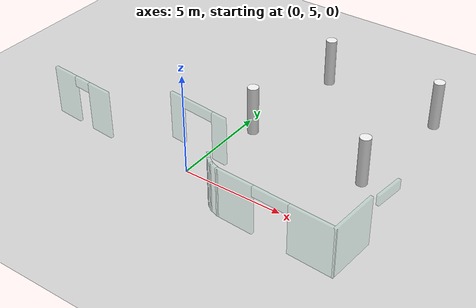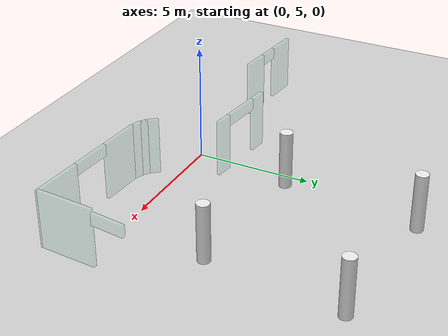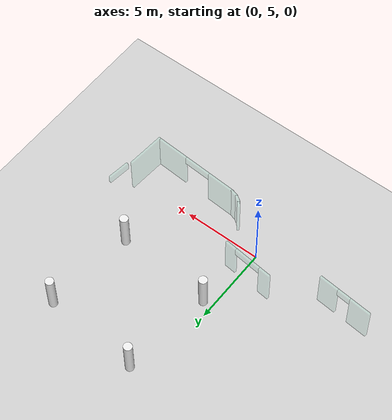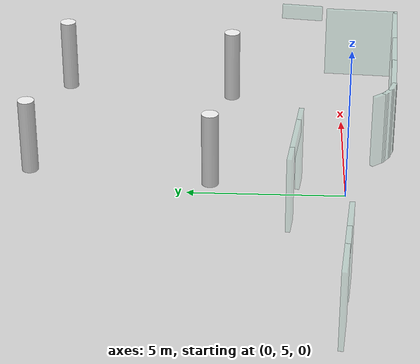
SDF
<sdf version="1.6">
 <world name="default">
  <model name="ground_plane">
   <static>1</static>
   <link name="link">
    <collision name="collision">
     <geometry><plane><normal>0 0 1</normal><size>100 100</size></plane></geometry>
     <surface><friction><ode><mu>100</mu><mu2>50</mu2></ode></friction></surface>
    </collision>
    <visual name="visual">
     <cast_shadows>0</cast_shadows>
     <geometry><plane><normal>0 0 1</normal><size>100 100</size></plane></geometry>
     <material>
      <script><uri>file://media/materials/scripts/gazebo.material</uri><name>Gazebo/Grey</name></script>
     </material>
    </visual>
   </link>
  </model>
  <model name="Glass_walls">
   <link name="Wall_10">
    <pose>8.18678 -0.842723 0 0 -0 1.49902</pose>
    <inertial>
     <mass>1</mass>
     <inertia><ixx>1</ixx><ixy>0</ixy><ixz>0</ixz><iyy>1</iyy><iyz>0</iyz><izz>1</izz></inertia>
    </inertial>
    <visual name="Wall_10_Visual">
     <pose>0 0 1.25 0 -0 0</pose>
     <geometry><box><size>2.51541 0.15 2.5</size></box></geometry>
     <material>
      <script><uri>file://media/materials/scripts/gazebo.material</uri><name>Gazebo/Grey</name></script>
      <ambient>0.435 0.796 0.675 1</ambient>
      <diffuse>0.7 0.7 0.7 1</diffuse>
      <specular>0.01 0.01 0.01 1</specular>
      <emissive>0 0 0 1</emissive>
      <shader type="vertex"><normal_map>__default__</normal_map></shader>
     </material>
     <meta><layer>0</layer></meta>
     <transparency>0.8</transparency>
    </visual>
    <collision name="Wall_10_Collision">
     <pose>0 0 1.25 0 -0 0</pose>
     <geometry><box><size>2.51541 0.15 2.5</size></box></geometry>
     <surface>
      <friction>
       <ode><mu>1</mu><mu2>1</mu2><fdir1>0 0 0</fdir1><slip1>0</slip1><slip2>0</slip2></ode>
       <torsional>
        <coefficient>1</coefficient>
        <patch_radius>0</patch_radius>
        <surface_radius>0</surface_radius>
        <use_patch_radius>1</use_patch_radius>
        <ode><slip>0</slip></ode>
       </torsional>
      </friction>
      <bounce><restitution_coefficient>0</restitution_coefficient><threshold>1e+06</threshold></bounce>
      <contact>
       <collide_without_contact>0</collide_without_contact>
       <collide_without_contact_bitmask>1</collide_without_contact_bitmask>
       <collide_bitmask>1</collide_bitmask>
       <ode>
        <soft_cfm>0</soft_cfm>
        <soft_erp>0.2</soft_erp>
        <kp>1e+13</kp>
        <kd>1</kd>
        <max_vel>0.01</max_vel>
        <min_depth>0</min_depth>
       </ode>
       <bullet>
        <split_impulse>1</split_impulse>
        <split_impulse_penetration_threshold>-0.01</split_impulse_penetration_threshold>
        <soft_cfm>0</soft_cfm>
        <soft_erp>0.2</soft_erp>
        <kp>1e+13</kp>
        <kd>1</kd>
       </bullet>
      </contact>
     </surface>
    </collision>
   </link>
   <link name="Wall_12">
    <pose>1.76645 -1.4266 0 0 0 -0.605125</pose>
    <inertial>
     <mass>1</mass>
     <inertia><ixx>1</ixx><ixy>0</ixy><ixz>0</ixz><iyy>1</iyy><iyz>0</iyz><izz>1</izz></inertia>
    </inertial>
    <visual name="Wall_12_Visual">
     <pose>0 0 1.25 0 -0 0</pose>
     <geometry><box><size>0.49057 0.15 2.5</size></box></geometry>
     <material>
      <script><uri>file://media/materials/scripts/gazebo.material</uri><name>Gazebo/Grey</name></script>
      <ambient>0.435 0.796 0.675 1</ambient>
      <diffuse>0.7 0.7 0.7 1</diffuse>
      <specular>0.01 0.01 0.01 1</specular>
      <emissive>0 0 0 1</emissive>
      <shader type="vertex"><normal_map>__default__</normal_map></shader>
     </material>
     <meta><layer>0</layer></meta>
     <transparency>0.8</transparency>
    </visual>
    <collision name="Wall_12_Collision">
     <pose>0 0 1.25 0 -0 0</pose>
     <geometry><box><size>0.49057 0.15 2.5</size></box></geometry>
     <surface>
      <friction>
       <ode><mu>1</mu><mu2>1</mu2><fdir1>0 0 0</fdir1><slip1>0</slip1><slip2>0</slip2></ode>
       <torsional>
        <coefficient>1</coefficient>
        <patch_radius>0</patch_radius>
        <surface_radius>0</surface_radius>
        <use_patch_radius>1</use_patch_radius>
        <ode><slip>0</slip></ode>
       </torsional>
      </friction>
      <bounce><restitution_coefficient>0</restitution_coefficient><threshold>1e+06</threshold></bounce>
      <contact>
       <collide_without_contact>0</collide_without_contact>
       <collide_without_contact_bitmask>1</collide_without_contact_bitmask>
       <collide_bitmask>1</collide_bitmask>
       <ode>
        <soft_cfm>0</soft_cfm>
        <soft_erp>0.2</soft_erp>
        <kp>1e+13</kp>
        <kd>1</kd>
        <max_vel>0.01</max_vel>
        <min_depth>0</min_depth>
       </ode>
       <bullet>
        <split_impulse>1</split_impulse>
        <split_impulse_penetration_threshold>-0.01</split_impulse_penetration_threshold>
        <soft_cfm>0</soft_cfm>
        <soft_erp>0.2</soft_erp>
        <kp>1e+13</kp>
        <kd>1</kd>
       </bullet>
      </contact>
     </surface>
    </collision>
   </link>
   <link name="Wall_13">
    <pose>2.11043 -1.58974 0 0 0 -0.314232</pose>
    <inertial>
     <mass>1</mass>
     <inertia><ixx>1</ixx><ixy>0</ixy><ixz>0</ixz><iyy>1</iyy><iyz>0</iyz><izz>1</izz></inertia>
    </inertial>
    <visual name="Wall_13_Visual">
     <pose>0 0 1.25 0 -0 0</pose>
     <geometry><box><size>0.57887 0.15 2.5</size></box></geometry>
     <material>
      <script><uri>file://media/materials/scripts/gazebo.material</uri><name>Gazebo/Grey</name></script>
      <ambient>0.435 0.796 0.675 1</ambient>
      <diffuse>0.7 0.7 0.7 1</diffuse>
      <specular>0.01 0.01 0.01 1</specular>
      <emissive>0 0 0 1</emissive>
      <shader type="vertex"><normal_map>__default__</normal_map></shader>
     </material>
     <meta><layer>0</layer></meta>
     <transparency>0.8</transparency>
    </visual>
    <collision name="Wall_13_Collision">
     <pose>0 0 1.25 0 -0 0</pose>
     <geometry><box><size>0.57887 0.15 2.5</size></box></geometry>
     <surface>
      <friction>
       <ode><mu>1</mu><mu2>1</mu2><fdir1>0 0 0</fdir1><slip1>0</slip1><slip2>0</slip2></ode>
       <torsional>
        <coefficient>1</coefficient>
        <patch_radius>0</patch_radius>
        <surface_radius>0</surface_radius>
        <use_patch_radius>1</use_patch_radius>
        <ode><slip>0</slip></ode>
       </torsional>
      </friction>
      <bounce><restitution_coefficient>0</restitution_coefficient><threshold>1e+06</threshold></bounce>
      <contact>
       <collide_without_contact>0</collide_without_contact>
       <collide_without_contact_bitmask>1</collide_without_contact_bitmask>
       <collide_bitmask>1</collide_bitmask>
       <ode>
        <soft_cfm>0</soft_cfm>
        <soft_erp>0.2</soft_erp>
        <kp>1e+13</kp>
        <kd>1</kd>
        <max_vel>0.01</max_vel>
        <min_depth>0</min_depth>
       </ode>
       <bullet>
        <split_impulse>1</split_impulse>
        <split_impulse_penetration_threshold>-0.01</split_impulse_penetration_threshold>
        <soft_cfm>0</soft_cfm>
        <soft_erp>0.2</soft_erp>
        <kp>1e+13</kp>
        <kd>1</kd>
       </bullet>
      </contact>
     </surface>
    </collision>
   </link>
   <link name="Wall_14">
    <pose>5.20817 -1.8392 0 0 0 -0.063217</pose>
    <inertial>
     <mass>1</mass>
     <inertia><ixx>1</ixx><ixy>0</ixy><ixz>0</ixz><iyy>1</iyy><iyz>0</iyz><izz>1</izz></inertia>
    </inertial>
    <visual name="Wall_14_Visual_2">
     <pose>-0.177864 0 2.25 0 -0 0</pose>
     <geometry><box><size>1.8 0.15 0.5</size></box></geometry>
     <material>
      <script><uri>file://media/materials/scripts/gazebo.material</uri><name>Gazebo/Grey</name></script>
      <ambient>0.435 0.796 0.675 1</ambient>
      <diffuse>0.7 0.7 0.7 1</diffuse>
      <specular>0.01 0.01 0.01 1</specular>
      <emissive>0 0 0 1</emissive>
      <shader type="vertex"><normal_map>__default__</normal_map></shader>
     </material>
     <meta><layer>0</layer></meta>
     <transparency>0.8</transparency>
    </visual>
    <visual name="Wall_14_Visual_1">
     <pose>1.84837 0 1.25 0 -0 0</pose>
     <geometry><box><size>2.25246 0.15 2.5</size></box></geometry>
     <material>
      <script><uri>file://media/materials/scripts/gazebo.material</uri><name>Gazebo/Grey</name></script>
      <ambient>0.435 0.796 0.675 1</ambient>
      <diffuse>0.7 0.7 0.7 1</diffuse>
      <specular>0.01 0.01 0.01 1</specular>
      <emissive>0 0 0 1</emissive>
      <shader type="vertex"><normal_map>__default__</normal_map></shader>
     </material>
     <meta><layer>0</layer></meta>
     <transparency>0.8</transparency>
    </visual>
    <visual name="Wall_14_Visual_0">
     <pose>-2.02623 0 1.25 0 -0 0</pose>
     <geometry><box><size>1.89673 0.15 2.5</size></box></geometry>
     <material>
      <script><uri>file://media/materials/scripts/gazebo.material</uri><name>Gazebo/Grey</name></script>
      <ambient>0.435 0.796 0.675 1</ambient>
      <diffuse>0.7 0.7 0.7 1</diffuse>
      <specular>0.01 0.01 0.01 1</specular>
      <emissive>0 0 0 1</emissive>
      <shader type="vertex"><normal_map>__default__</normal_map></shader>
     </material>
     <meta><layer>0</layer></meta>
     <transparency>0.8</transparency>
    </visual>
    <collision name="Wall_14_Collision_1">
     <pose>1.84837 0 1.25 0 -0 0</pose>
     <geometry><box><size>2.25246 0.15 2.5</size></box></geometry>
     <surface>
      <friction>
       <ode><mu>1</mu><mu2>1</mu2><fdir1>0 0 0</fdir1><slip1>0</slip1><slip2>0</slip2></ode>
       <torsional>
        <coefficient>1</coefficient>
        <patch_radius>0</patch_radius>
        <surface_radius>0</surface_radius>
        <use_patch_radius>1</use_patch_radius>
        <ode><slip>0</slip></ode>
       </torsional>
      </friction>
      <bounce><restitution_coefficient>0</restitution_coefficient><threshold>1e+06</threshold></bounce>
      <contact>
       <collide_without_contact>0</collide_without_contact>
       <collide_without_contact_bitmask>1</collide_without_contact_bitmask>
       <collide_bitmask>1</collide_bitmask>
       <ode>
        <soft_cfm>0</soft_cfm>
        <soft_erp>0.2</soft_erp>
        <kp>1e+13</kp>
        <kd>1</kd>
        <max_vel>0.01</max_vel>
        <min_depth>0</min_depth>
       </ode>
       <bullet>
        <split_impulse>1</split_impulse>
        <split_impulse_penetration_threshold>-0.01</split_impulse_penetration_threshold>
        <soft_cfm>0</soft_cfm>
        <soft_erp>0.2</soft_erp>
        <kp>1e+13</kp>
        <kd>1</kd>
       </bullet>
      </contact>
     </surface>
    </collision>
    <collision name="Wall_14_Collision_0">
     <pose>-2.02623 0 1.25 0 -0 0</pose>
     <geometry><box><size>1.89673 0.15 2.5</size></box></geometry>
     <surface>
      <friction>
       <ode><mu>1</mu><mu2>1</mu2><fdir1>0 0 0</fdir1><slip1>0</slip1><slip2>0</slip2></ode>
       <torsional>
        <coefficient>1</coefficient>
        <patch_radius>0</patch_radius>
        <surface_radius>0</surface_radius>
        <use_patch_radius>1</use_patch_radius>
        <ode><slip>0</slip></ode>
       </torsional>
      </friction>
      <bounce><restitution_coefficient>0</restitution_coefficient><threshold>1e+06</threshold></bounce>
      <contact>
       <collide_without_contact>0</collide_without_contact>
       <collide_without_contact_bitmask>1</collide_without_contact_bitmask>
       <collide_bitmask>1</collide_bitmask>
       <ode>
        <soft_cfm>0</soft_cfm>
        <soft_erp>0.2</soft_erp>
        <kp>1e+13</kp>
        <kd>1</kd>
        <max_vel>0.01</max_vel>
        <min_depth>0</min_depth>
       </ode>
       <bullet>
        <split_impulse>1</split_impulse>
        <split_impulse_penetration_threshold>-0.01</split_impulse_penetration_threshold>
        <soft_cfm>0</soft_cfm>
        <soft_erp>0.2</soft_erp>
        <kp>1e+13</kp>
        <kd>1</kd>
       </bullet>
      </contact>
     </surface>
    </collision>
    <collision name="Wall_14_Collision_2">
     <pose>-0.177864 0 2.25 0 -0 0</pose>
     <geometry><box><size>1.8 0.15 0.5</size></box></geometry>
     <surface>
      <friction>
       <ode><mu>1</mu><mu2>1</mu2><fdir1>0 0 0</fdir1><slip1>0</slip1><slip2>0</slip2></ode>
       <torsional>
        <coefficient>1</coefficient>
        <patch_radius>0</patch_radius>
        <surface_radius>0</surface_radius>
        <use_patch_radius>1</use_patch_radius>
        <ode><slip>0</slip></ode>
       </torsional>
      </friction>
      <bounce><restitution_coefficient>0</restitution_coefficient><threshold>1e+06</threshold></bounce>
      <contact>
       <collide_without_contact>0</collide_without_contact>
       <collide_without_contact_bitmask>1</collide_without_contact_bitmask>
       <collide_bitmask>1</collide_bitmask>
       <ode>
        <soft_cfm>0</soft_cfm>
        <soft_erp>0.2</soft_erp>
        <kp>1e+13</kp>
        <kd>1</kd>
        <max_vel>0.01</max_vel>
        <min_depth>0</min_depth>
       </ode>
       <bullet>
        <split_impulse>1</split_impulse>
        <split_impulse_penetration_threshold>-0.01</split_impulse_penetration_threshold>
        <soft_cfm>0</soft_cfm>
        <soft_erp>0.2</soft_erp>
        <kp>1e+13</kp>
        <kd>1</kd>
       </bullet>
      </contact>
     </surface>
    </collision>
   </link>
   <link name="Wall_16">
    <pose>-1.20178 1.53997 0 0 0 -0.111358</pose>
    <inertial>
     <mass>1</mass>
     <inertia><ixx>1</ixx><ixy>0</ixy><ixz>0</ixz><iyy>1</iyy><iyz>0</iyz><izz>1</izz></inertia>
    </inertial>
    <visual name="Wall_16_Visual_0">
     <pose>-1.28798 0 1.25 0 -0 0</pose>
     <geometry><box><size>0.785518 0.15 2.5</size></box></geometry>
     <material>
      <script><uri>file://media/materials/scripts/gazebo.material</uri><name>Gazebo/Grey</name></script>
      <ambient>0.435 0.796 0.675 1</ambient>
      <diffuse>0.7 0.7 0.7 1</diffuse>
      <specular>0.01 0.01 0.01 1</specular>
      <emissive>0 0 0 1</emissive>
      <shader type="vertex"><normal_map>__default__</normal_map></shader>
     </material>
     <meta><layer>0</layer></meta>
     <transparency>0.8</transparency>
    </visual>
    <visual name="Wall_16_Visual_1">
     <pose>1.29276 0 1.25 0 -0 0</pose>
     <geometry><box><size>0.775955 0.15 2.5</size></box></geometry>
     <material>
      <script><uri>file://media/materials/scripts/gazebo.material</uri><name>Gazebo/Grey</name></script>
      <ambient>0.435 0.796 0.675 1</ambient>
      <diffuse>0.7 0.7 0.7 1</diffuse>
      <specular>0.01 0.01 0.01 1</specular>
      <emissive>0 0 0 1</emissive>
      <shader type="vertex"><normal_map>__default__</normal_map></shader>
     </material>
     <meta><layer>0</layer></meta>
     <transparency>0.8</transparency>
    </visual>
    <visual name="Wall_16_Visual_2">
     <pose>0.004782 0 2.25 0 -0 0</pose>
     <geometry><box><size>1.8 0.15 0.5</size></box></geometry>
     <material>
      <script><uri>file://media/materials/scripts/gazebo.material</uri><name>Gazebo/Grey</name></script>
      <ambient>0.435 0.796 0.675 1</ambient>
      <diffuse>0.7 0.7 0.7 1</diffuse>
      <specular>0.01 0.01 0.01 1</specular>
      <emissive>0 0 0 1</emissive>
      <shader type="vertex"><normal_map>__default__</normal_map></shader>
     </material>
     <meta><layer>0</layer></meta>
     <transparency>0.8</transparency>
    </visual>
    <collision name="Wall_16_Collision_0">
     <pose>-1.28798 0 1.25 0 -0 0</pose>
     <geometry><box><size>0.785518 0.15 2.5</size></box></geometry>
     <surface>
      <friction>
       <ode><mu>1</mu><mu2>1</mu2><fdir1>0 0 0</fdir1><slip1>0</slip1><slip2>0</slip2></ode>
       <torsional>
        <coefficient>1</coefficient>
        <patch_radius>0</patch_radius>
        <surface_radius>0</surface_radius>
        <use_patch_radius>1</use_patch_radius>
        <ode><slip>0</slip></ode>
       </torsional>
      </friction>
      <bounce><restitution_coefficient>0</restitution_coefficient><threshold>1e+06</threshold></bounce>
      <contact>
       <collide_without_contact>0</collide_without_contact>
       <collide_without_contact_bitmask>1</collide_without_contact_bitmask>
       <collide_bitmask>1</collide_bitmask>
       <ode>
        <soft_cfm>0</soft_cfm>
        <soft_erp>0.2</soft_erp>
        <kp>1e+13</kp>
        <kd>1</kd>
        <max_vel>0.01</max_vel>
        <min_depth>0</min_depth>
       </ode>
       <bullet>
        <split_impulse>1</split_impulse>
        <split_impulse_penetration_threshold>-0.01</split_impulse_penetration_threshold>
        <soft_cfm>0</soft_cfm>
        <soft_erp>0.2</soft_erp>
        <kp>1e+13</kp>
        <kd>1</kd>
       </bullet>
      </contact>
     </surface>
    </collision>
    <collision name="Wall_16_Collision_2">
     <pose>0.004782 0 2.25 0 -0 0</pose>
     <geometry><box><size>1.8 0.15 0.5</size></box></geometry>
     <surface>
      <friction>
       <ode><mu>1</mu><mu2>1</mu2><fdir1>0 0 0</fdir1><slip1>0</slip1><slip2>0</slip2></ode>
       <torsional>
        <coefficient>1</coefficient>
        <patch_radius>0</patch_radius>
        <surface_radius>0</surface_radius>
        <use_patch_radius>1</use_patch_radius>
        <ode><slip>0</slip></ode>
       </torsional>
      </friction>
      <bounce><restitution_coefficient>0</restitution_coefficient><threshold>1e+06</threshold></bounce>
      <contact>
       <collide_without_contact>0</collide_without_contact>
       <collide_without_contact_bitmask>1</collide_without_contact_bitmask>
       <collide_bitmask>1</collide_bitmask>
       <ode>
        <soft_cfm>0</soft_cfm>
        <soft_erp>0.2</soft_erp>
        <kp>1e+13</kp>
        <kd>1</kd>
        <max_vel>0.01</max_vel>
        <min_depth>0</min_depth>
       </ode>
       <bullet>
        <split_impulse>1</split_impulse>
        <split_impulse_penetration_threshold>-0.01</split_impulse_penetration_threshold>
        <soft_cfm>0</soft_cfm>
        <soft_erp>0.2</soft_erp>
        <kp>1e+13</kp>
        <kd>1</kd>
       </bullet>
      </contact>
     </surface>
    </collision>
    <collision name="Wall_16_Collision_1">
     <pose>1.29276 0 1.25 0 -0 0</pose>
     <geometry><box><size>0.775955 0.15 2.5</size></box></geometry>
     <surface>
      <friction>
       <ode><mu>1</mu><mu2>1</mu2><fdir1>0 0 0</fdir1><slip1>0</slip1><slip2>0</slip2></ode>
       <torsional>
        <coefficient>1</coefficient>
        <patch_radius>0</patch_radius>
        <surface_radius>0</surface_radius>
        <use_patch_radius>1</use_patch_radius>
        <ode><slip>0</slip></ode>
       </torsional>
      </friction>
      <bounce><restitution_coefficient>0</restitution_coefficient><threshold>1e+06</threshold></bounce>
      <contact>
       <collide_without_contact>0</collide_without_contact>
       <collide_without_contact_bitmask>1</collide_without_contact_bitmask>
       <collide_bitmask>1</collide_bitmask>
       <ode>
        <soft_cfm>0</soft_cfm>
        <soft_erp>0.2</soft_erp>
        <kp>1e+13</kp>
        <kd>1</kd>
        <max_vel>0.01</max_vel>
        <min_depth>0</min_depth>
       </ode>
       <bullet>
        <split_impulse>1</split_impulse>
        <split_impulse_penetration_threshold>-0.01</split_impulse_penetration_threshold>
        <soft_cfm>0</soft_cfm>
        <soft_erp>0.2</soft_erp>
        <kp>1e+13</kp>
        <kd>1</kd>
       </bullet>
      </contact>
     </surface>
    </collision>
   </link>
   <link name="Wall_18">
    <pose>8.55334 1.28019 0.999398 0 -0 1.44515</pose>
    <inertial>
     <mass>1</mass>
     <pose>0 0 1.25 0 -0 0</pose>
     <inertia><ixx>1</ixx><ixy>0</ixy><ixz>0</ixz><iyy>1</iyy><iyz>0</iyz><izz>1</izz></inertia>
    </inertial>
    <visual name="Wall_18_Visual_0">
     <pose>0 0 1.25 0 -0 0</pose>
     <geometry><box><size>1.44127 0.15 0.5</size></box></geometry>
     <material>
      <script><uri>file://media/materials/scripts/gazebo.material</uri><name>Gazebo/Grey</name></script>
      <ambient>0.435 0.796 0.675 1</ambient>
      <diffuse>0.7 0.7 0.7 1</diffuse>
      <specular>0.01 0.01 0.01 1</specular>
      <emissive>0 0 0 1</emissive>
      <shader type="vertex"><normal_map>__default__</normal_map></shader>
     </material>
     <meta><layer>0</layer></meta>
     <transparency>0.8</transparency>
    </visual>
    <collision name="Wall_18_Collision_0">
     <pose>0 0 1.25 0 -0 0</pose>
     <geometry><box><size>1.44127 0.15 0.5</size></box></geometry>
     <surface>
      <friction>
       <ode><mu>1</mu><mu2>1</mu2><fdir1>0 0 0</fdir1><slip1>0</slip1><slip2>0</slip2></ode>
       <torsional>
        <coefficient>1</coefficient>
        <patch_radius>0</patch_radius>
        <surface_radius>0</surface_radius>
        <use_patch_radius>1</use_patch_radius>
        <ode><slip>0</slip></ode>
       </torsional>
      </friction>
      <bounce><restitution_coefficient>0</restitution_coefficient><threshold>1e+06</threshold></bounce>
      <contact>
       <collide_without_contact>0</collide_without_contact>
       <collide_without_contact_bitmask>1</collide_without_contact_bitmask>
       <collide_bitmask>1</collide_bitmask>
       <ode>
        <soft_cfm>0</soft_cfm>
        <soft_erp>0.2</soft_erp>
        <kp>1e+13</kp>
        <kd>1</kd>
        <max_vel>0.01</max_vel>
        <min_depth>0</min_depth>
       </ode>
       <bullet>
        <split_impulse>1</split_impulse>
        <split_impulse_penetration_threshold>-0.01</split_impulse_penetration_threshold>
        <soft_cfm>0</soft_cfm>
        <soft_erp>0.2</soft_erp>
        <kp>1e+13</kp>
        <kd>1</kd>
       </bullet>
      </contact>
     </surface>
    </collision>
   </link>
   <link name="Wall_4">
    <pose>-6.95661 0.126193 -0.003941 0 0 -0.091842</pose>
    <inertial>
     <mass>1</mass>
     <inertia><ixx>1</ixx><ixy>0</ixy><ixz>0</ixz><iyy>1</iyy><iyz>0</iyz><izz>1</izz></inertia>
    </inertial>
    <visual name="Wall_4_Visual_0">
     <pose>-1.09152 0 1.25 0 -0 0</pose>
     <geometry><box><size>1.41183 0.15 2.5</size></box></geometry>
     <material>
      <script><uri>file://media/materials/scripts/gazebo.material</uri><name>Gazebo/Grey</name></script>
      <ambient>0.435 0.796 0.675 1</ambient>
      <diffuse>0.7 0.7 0.7 1</diffuse>
      <specular>0.01 0.01 0.01 1</specular>
      <emissive>0 0 0 1</emissive>
      <shader type="vertex"><normal_map>__default__</normal_map></shader>
     </material>
     <meta><layer>0</layer></meta>
     <transparency>0.8</transparency>
    </visual>
    <visual name="Wall_4_Visual_2">
     <pose>0.064394 0 2.25 0 -0 0</pose>
     <geometry><box><size>0.9 0.15 0.5</size></box></geometry>
     <material>
      <script><uri>file://media/materials/scripts/gazebo.material</uri><name>Gazebo/Grey</name></script>
      <ambient>0.435 0.796 0.675 1</ambient>
      <diffuse>0.7 0.7 0.7 1</diffuse>
      <specular>0.01 0.01 0.01 1</specular>
      <emissive>0 0 0 1</emissive>
      <shader type="vertex"><normal_map>__default__</normal_map></shader>
     </material>
     <meta><layer>0</layer></meta>
     <transparency>0.8</transparency>
    </visual>
    <visual name="Wall_4_Visual_1">
     <pose>1.15592 0 1.25 0 -0 0</pose>
     <geometry><box><size>1.28304 0.15 2.5</size></box></geometry>
     <material>
      <script><uri>file://media/materials/scripts/gazebo.material</uri><name>Gazebo/Grey</name></script>
      <ambient>0.435 0.796 0.675 1</ambient>
      <diffuse>0.7 0.7 0.7 1</diffuse>
      <specular>0.01 0.01 0.01 1</specular>
      <emissive>0 0 0 1</emissive>
      <shader type="vertex"><normal_map>__default__</normal_map></shader>
     </material>
     <meta><layer>0</layer></meta>
     <transparency>0.8</transparency>
    </visual>
    <collision name="Wall_4_Collision_0">
     <pose>-1.09152 0 1.25 0 -0 0</pose>
     <geometry><box><size>1.41183 0.15 2.5</size></box></geometry>
     <surface>
      <friction>
       <ode><mu>1</mu><mu2>1</mu2><fdir1>0 0 0</fdir1><slip1>0</slip1><slip2>0</slip2></ode>
       <torsional>
        <coefficient>1</coefficient>
        <patch_radius>0</patch_radius>
        <surface_radius>0</surface_radius>
        <use_patch_radius>1</use_patch_radius>
        <ode><slip>0</slip></ode>
       </torsional>
      </friction>
      <bounce><restitution_coefficient>0</restitution_coefficient><threshold>1e+06</threshold></bounce>
      <contact>
       <collide_without_contact>0</collide_without_contact>
       <collide_without_contact_bitmask>1</collide_without_contact_bitmask>
       <collide_bitmask>1</collide_bitmask>
       <ode>
        <soft_cfm>0</soft_cfm>
        <soft_erp>0.2</soft_erp>
        <kp>1e+13</kp>
        <kd>1</kd>
        <max_vel>0.01</max_vel>
        <min_depth>0</min_depth>
       </ode>
       <bullet>
        <split_impulse>1</split_impulse>
        <split_impulse_penetration_threshold>-0.01</split_impulse_penetration_threshold>
        <soft_cfm>0</soft_cfm>
        <soft_erp>0.2</soft_erp>
        <kp>1e+13</kp>
        <kd>1</kd>
       </bullet>
      </contact>
     </surface>
    </collision>
    <collision name="Wall_4_Collision_1">
     <pose>1.15592 0 1.25 0 -0 0</pose>
     <geometry><box><size>1.28304 0.15 2.5</size></box></geometry>
     <surface>
      <friction>
       <ode><mu>1</mu><mu2>1</mu2><fdir1>0 0 0</fdir1><slip1>0</slip1><slip2>0</slip2></ode>
       <torsional>
        <coefficient>1</coefficient>
        <patch_radius>0</patch_radius>
        <surface_radius>0</surface_radius>
        <use_patch_radius>1</use_patch_radius>
        <ode><slip>0</slip></ode>
       </torsional>
      </friction>
      <bounce><restitution_coefficient>0</restitution_coefficient><threshold>1e+06</threshold></bounce>
      <contact>
       <collide_without_contact>0</collide_without_contact>
       <collide_without_contact_bitmask>1</collide_without_contact_bitmask>
       <collide_bitmask>1</collide_bitmask>
       <ode>
        <soft_cfm>0</soft_cfm>
        <soft_erp>0.2</soft_erp>
        <kp>1e+13</kp>
        <kd>1</kd>
        <max_vel>0.01</max_vel>
        <min_depth>0</min_depth>
       </ode>
       <bullet>
        <split_impulse>1</split_impulse>
        <split_impulse_penetration_threshold>-0.01</split_impulse_penetration_threshold>
        <soft_cfm>0</soft_cfm>
        <soft_erp>0.2</soft_erp>
        <kp>1e+13</kp>
        <kd>1</kd>
       </bullet>
      </contact>
     </surface>
    </collision>
    <collision name="Wall_4_Collision_2">
     <pose>0.064394 0 2.25 0 -0 0</pose>
     <geometry><box><size>0.9 0.15 0.5</size></box></geometry>
     <surface>
      <friction>
       <ode><mu>1</mu><mu2>1</mu2><fdir1>0 0 0</fdir1><slip1>0</slip1><slip2>0</slip2></ode>
       <torsional>
        <coefficient>1</coefficient>
        <patch_radius>0</patch_radius>
        <surface_radius>0</surface_radius>
        <use_patch_radius>1</use_patch_radius>
        <ode><slip>0</slip></ode>
       </torsional>
      </friction>
      <bounce><restitution_coefficient>0</restitution_coefficient><threshold>1e+06</threshold></bounce>
      <contact>
       <collide_without_contact>0</collide_without_contact>
       <collide_without_contact_bitmask>1</collide_without_contact_bitmask>
       <collide_bitmask>1</collide_bitmask>
       <ode>
        <soft_cfm>0</soft_cfm>
        <soft_erp>0.2</soft_erp>
        <kp>1e+13</kp>
        <kd>1</kd>
        <max_vel>0.01</max_vel>
        <min_depth>0</min_depth>
       </ode>
       <bullet>
        <split_impulse>1</split_impulse>
        <split_impulse_penetration_threshold>-0.01</split_impulse_penetration_threshold>
        <soft_cfm>0</soft_cfm>
        <soft_erp>0.2</soft_erp>
        <kp>1e+13</kp>
        <kd>1</kd>
       </bullet>
      </contact>
     </surface>
    </collision>
   </link>
   <link name="Wall_6">
    <pose>1.50015 -1.18229 0 0 0 -0.862665</pose>
    <inertial>
     <mass>1</mass>
     <inertia><ixx>1</ixx><ixy>0</ixy><ixz>0</ixz><iyy>1</iyy><iyz>0</iyz><izz>1</izz></inertia>
    </inertial>
    <visual name="Wall_6_Visual">
     <pose>0 0 1.25 0 -0 0</pose>
     <geometry><box><size>0.538201 0.15 2.5</size></box></geometry>
     <material>
      <script><uri>file://media/materials/scripts/gazebo.material</uri><name>Gazebo/Grey</name></script>
      <ambient>0.435 0.796 0.675 1</ambient>
      <diffuse>0.7 0.7 0.7 1</diffuse>
      <specular>0.01 0.01 0.01 1</specular>
      <emissive>0 0 0 1</emissive>
      <shader type="vertex"><normal_map>__default__</normal_map></shader>
     </material>
     <meta><layer>0</layer></meta>
     <transparency>0.8</transparency>
    </visual>
    <collision name="Wall_6_Collision">
     <pose>0 0 1.25 0 -0 0</pose>
     <geometry><box><size>0.538201 0.15 2.5</size></box></geometry>
     <surface>
      <friction>
       <ode><mu>1</mu><mu2>1</mu2><fdir1>0 0 0</fdir1><slip1>0</slip1><slip2>0</slip2></ode>
       <torsional>
        <coefficient>1</coefficient>
        <patch_radius>0</patch_radius>
        <surface_radius>0</surface_radius>
        <use_patch_radius>1</use_patch_radius>
        <ode><slip>0</slip></ode>
       </torsional>
      </friction>
      <bounce><restitution_coefficient>0</restitution_coefficient><threshold>1e+06</threshold></bounce>
      <contact>
       <collide_without_contact>0</collide_without_contact>
       <collide_without_contact_bitmask>1</collide_without_contact_bitmask>
       <collide_bitmask>1</collide_bitmask>
       <ode>
        <soft_cfm>0</soft_cfm>
        <soft_erp>0.2</soft_erp>
        <kp>1e+13</kp>
        <kd>1</kd>
        <max_vel>0.01</max_vel>
        <min_depth>0</min_depth>
       </ode>
       <bullet>
        <split_impulse>1</split_impulse>
        <split_impulse_penetration_threshold>-0.01</split_impulse_penetration_threshold>
        <soft_cfm>0</soft_cfm>
        <soft_erp>0.2</soft_erp>
        <kp>1e+13</kp>
        <kd>1</kd>
       </bullet>
      </contact>
     </surface>
    </collision>
   </link>
   <static>1</static>
   <pose>0.66554 5.08189 0 0 -0 0</pose>
  </model>
  <model name="colums_lectorium">
   <static>1</static>
   <link name="column_lect_1">
    <pose>1.3 15.16 1.23829 0 -0 0</pose>
    <inertial>
     <mass>1</mass>
     <inertia><ixx>0.145833</ixx><ixy>0</ixy><ixz>0</ixz><iyy>0.145833</iyy><iyz>0</iyz><izz>0.125</izz></inertia>
    </inertial>
    <gravity>0</gravity>
    <visual name="visual">
     <geometry><cylinder><radius>0.27</radius><length>2.5</length></cylinder></geometry>
     <material>
      <lighting>1</lighting>
      <script><uri>file://media/materials/scripts/gazebo.material</uri><name>Gazebo/White</name></script>
      <ambient>1 1 1 1</ambient>
      <diffuse>1 1 1 1</diffuse>
      <specular>0 0 0 1</specular>
      <emissive>0 0 0 1</emissive>
      <shader type="vertex"><normal_map>__default__</normal_map></shader>
     </material>
    </visual>
    <collision name="collision">
     <geometry><cylinder><radius>0.27</radius><length>2.5</length></cylinder></geometry>
     <surface>
      <friction>
       <ode><mu>1</mu><mu2>1</mu2><fdir1>0 0 0</fdir1><slip1>0</slip1><slip2>0</slip2></ode>
       <torsional>
        <coefficient>1</coefficient>
        <patch_radius>0</patch_radius>
        <surface_radius>0</surface_radius>
        <use_patch_radius>1</use_patch_radius>
        <ode><slip>0</slip></ode>
       </torsional>
      </friction>
      <bounce><restitution_coefficient>0</restitution_coefficient><threshold>1e+06</threshold></bounce>
      <contact>
       <collide_without_contact>0</collide_without_contact>
       <collide_without_contact_bitmask>1</collide_without_contact_bitmask>
       <collide_bitmask>1</collide_bitmask>
       <ode>
        <soft_cfm>0</soft_cfm>
        <soft_erp>0.2</soft_erp>
        <kp>1e+13</kp>
        <kd>1</kd>
        <max_vel>0.01</max_vel>
        <min_depth>0</min_depth>
       </ode>
       <bullet>
        <split_impulse>1</split_impulse>
        <split_impulse_penetration_threshold>-0.01</split_impulse_penetration_threshold>
        <soft_cfm>0</soft_cfm>
        <soft_erp>0.2</soft_erp>
        <kp>1e+13</kp>
        <kd>1</kd>
       </bullet>
      </contact>
     </surface>
    </collision>
   </link>
   <link name="column_lect_2">
    <pose>7.44143 14.6492 1.23829 0 -0 0</pose>
    <inertial>
     <mass>1</mass>
     <inertia><ixx>0.145833</ixx><ixy>0</ixy><ixz>0</ixz><iyy>0.145833</iyy><iyz>0</iyz><izz>0.125</izz></inertia>
    </inertial>
    <gravity>0</gravity>
    <visual name="visual">
     <geometry><cylinder><radius>0.27</radius><length>2.5</length></cylinder></geometry>
     <material>
      <lighting>1</lighting>
      <script><uri>file://media/materials/scripts/gazebo.material</uri><name>Gazebo/White</name></script>
      <ambient>1 1 1 1</ambient>
      <diffuse>1 1 1 1</diffuse>
      <specular>0 0 0 1</specular>
      <emissive>0 0 0 1</emissive>
      <shader type="vertex"><normal_map>__default__</normal_map></shader>
     </material>
    </visual>
    <collision name="collision">
     <geometry><cylinder><radius>0.27</radius><length>2.5</length></cylinder></geometry>
     <surface>
      <friction>
       <ode><mu>1</mu><mu2>1</mu2><fdir1>0 0 0</fdir1><slip1>0</slip1><slip2>0</slip2></ode>
       <torsional>
        <coefficient>1</coefficient>
        <patch_radius>0</patch_radius>
        <surface_radius>0</surface_radius>
        <use_patch_radius>1</use_patch_radius>
        <ode><slip>0</slip></ode>
       </torsional>
      </friction>
      <bounce><restitution_coefficient>0</restitution_coefficient><threshold>1e+06</threshold></bounce>
      <contact>
       <collide_without_contact>0</collide_without_contact>
       <collide_without_contact_bitmask>1</collide_without_contact_bitmask>
       <collide_bitmask>1</collide_bitmask>
       <ode>
        <soft_cfm>0</soft_cfm>
        <soft_erp>0.2</soft_erp>
        <kp>1e+13</kp>
        <kd>1</kd>
        <max_vel>0.01</max_vel>
        <min_depth>0</min_depth>
       </ode>
       <bullet>
        <split_impulse>1</split_impulse>
        <split_impulse_penetration_threshold>-0.01</split_impulse_penetration_threshold>
        <soft_cfm>0</soft_cfm>
        <soft_erp>0.2</soft_erp>
        <kp>1e+13</kp>
        <kd>1</kd>
       </bullet>
      </contact>
     </surface>
    </collision>
   </link>
   <link name="column_lect_3">
    <pose>6.79899 8.81813 1.23829 0 -0 0</pose>
    <inertial>
     <mass>1</mass>
     <inertia><ixx>0.145833</ixx><ixy>0</ixy><ixz>0</ixz><iyy>0.145833</iyy><iyz>0</iyz><izz>0.125</izz></inertia>
    </inertial>
    <gravity>0</gravity>
    <visual name="visual">
     <geometry><cylinder><radius>0.27</radius><length>2.5</length></cylinder></geometry>
     <material>
      <lighting>1</lighting>
      <script><uri>file://media/materials/scripts/gazebo.material</uri><name>Gazebo/White</name></script>
      <ambient>1 1 1 1</ambient>
      <diffuse>1 1 1 1</diffuse>
      <specular>0 0 0 1</specular>
      <emissive>0 0 0 1</emissive>
      <shader type="vertex"><normal_map>__default__</normal_map></shader>
     </material>
    </visual>
    <collision name="collision">
     <geometry><cylinder><radius>0.27</radius><length>2.5</length></cylinder></geometry>
     <surface>
      <friction>
       <ode><mu>1</mu><mu2>1</mu2><fdir1>0 0 0</fdir1><slip1>0</slip1><slip2>0</slip2></ode>
       <torsional>
        <coefficient>1</coefficient>
        <patch_radius>0</patch_radius>
        <surface_radius>0</surface_radius>
        <use_patch_radius>1</use_patch_radius>
        <ode><slip>0</slip></ode>
       </torsional>
      </friction>
      <bounce><restitution_coefficient>0</restitution_coefficient><threshold>1e+06</threshold></bounce>
      <contact>
       <collide_without_contact>0</collide_without_contact>
       <collide_without_contact_bitmask>1</collide_without_contact_bitmask>
       <collide_bitmask>1</collide_bitmask>
       <ode>
        <soft_cfm>0</soft_cfm>
        <soft_erp>0.2</soft_erp>
        <kp>1e+13</kp>
        <kd>1</kd>
        <max_vel>0.01</max_vel>
        <min_depth>0</min_depth>
       </ode>
       <bullet>
        <split_impulse>1</split_impulse>
        <split_impulse_penetration_threshold>-0.01</split_impulse_penetration_threshold>
        <soft_cfm>0</soft_cfm>
        <soft_erp>0.2</soft_erp>
        <kp>1e+13</kp>
        <kd>1</kd>
       </bullet>
      </contact>
     </surface>
    </collision>
   </link>
   <link name="column_lect_4">
    <pose>0.627339 9.28477 1.23829 0 -0 0</pose>
    <inertial>
     <mass>1</mass>
     <inertia><ixx>0.145833</ixx><ixy>0</ixy><ixz>0</ixz><iyy>0.145833</iyy><iyz>0</iyz><izz>0.125</izz></inertia>
    </inertial>
    <gravity>0</gravity>
    <visual name="visual">
     <geometry><cylinder><radius>0.27</radius><length>2.5</length></cylinder></geometry>
     <material>
      <lighting>1</lighting>
      <script><uri>file://media/materials/scripts/gazebo.material</uri><name>Gazebo/White</name></script>
      <ambient>1 1 1 1</ambient>
      <diffuse>1 1 1 1</diffuse>
      <specular>0 0 0 1</specular>
      <emissive>0 0 0 1</emissive>
      <shader type="vertex"><normal_map>__default__</normal_map></shader>
     </material>
    </visual>
    <collision name="collision">
     <geometry><cylinder><radius>0.27</radius><length>2.5</length></cylinder></geometry>
     <surface>
      <friction>
       <ode><mu>1</mu><mu2>1</mu2><fdir1>0 0 0</fdir1><slip1>0</slip1><slip2>0</slip2></ode>
       <torsional>
        <coefficient>1</coefficient>
        <patch_radius>0</patch_radius>
        <surface_radius>0</surface_radius>
        <use_patch_radius>1</use_patch_radius>
        <ode><slip>0</slip></ode>
       </torsional>
      </friction>
      <bounce><restitution_coefficient>0</restitution_coefficient><threshold>1e+06</threshold></bounce>
      <contact>
       <collide_without_contact>0</collide_without_contact>
       <collide_without_contact_bitmask>1</collide_without_contact_bitmask>
       <collide_bitmask>1</collide_bitmask>
       <ode>
        <soft_cfm>0</soft_cfm>
        <soft_erp>0.2</soft_erp>
        <kp>1e+13</kp>
        <kd>1</kd>
        <max_vel>0.01</max_vel>
        <min_depth>0</min_depth>
       </ode>
       <bullet>
        <split_impulse>1</split_impulse>
        <split_impulse_penetration_threshold>-0.01</split_impulse_penetration_threshold>
        <soft_cfm>0</soft_cfm>
        <soft_erp>0.2</soft_erp>
        <kp>1e+13</kp>
        <kd>1</kd>
       </bullet>
      </contact>
     </surface>
    </collision>
   </link>
  </model>
 </world>
</sdf>
